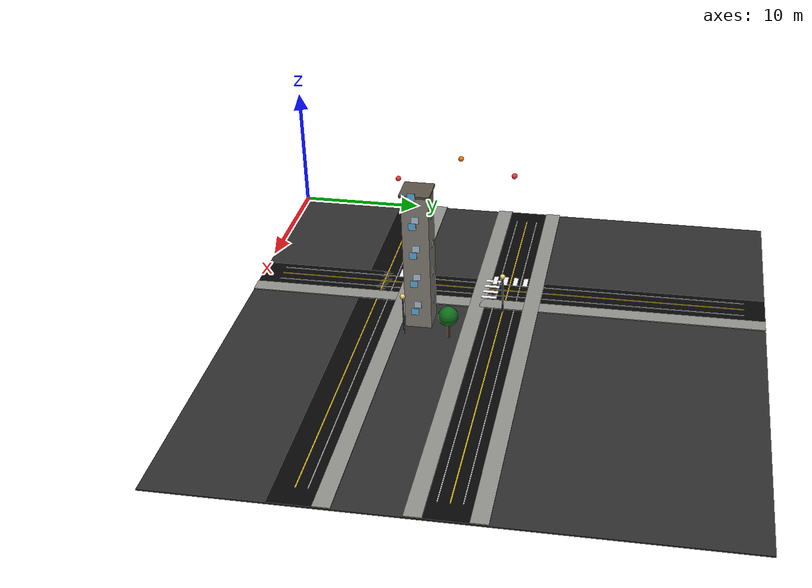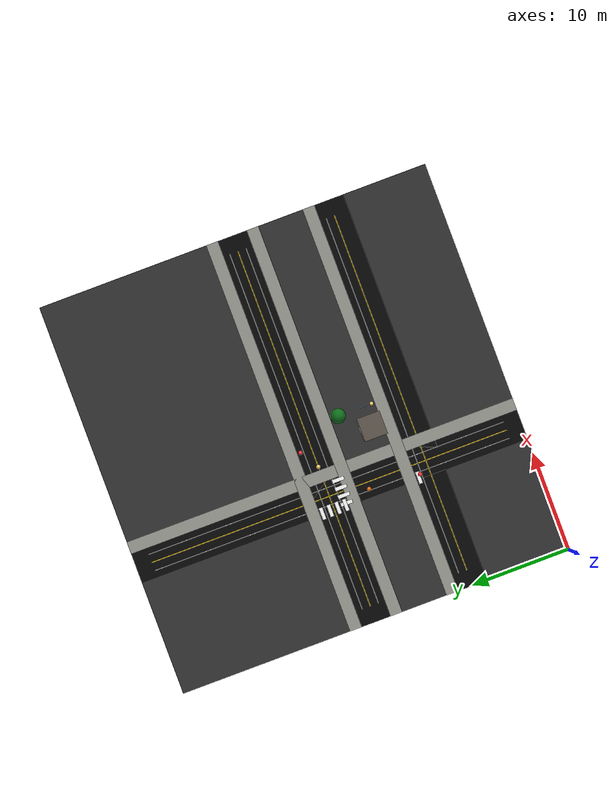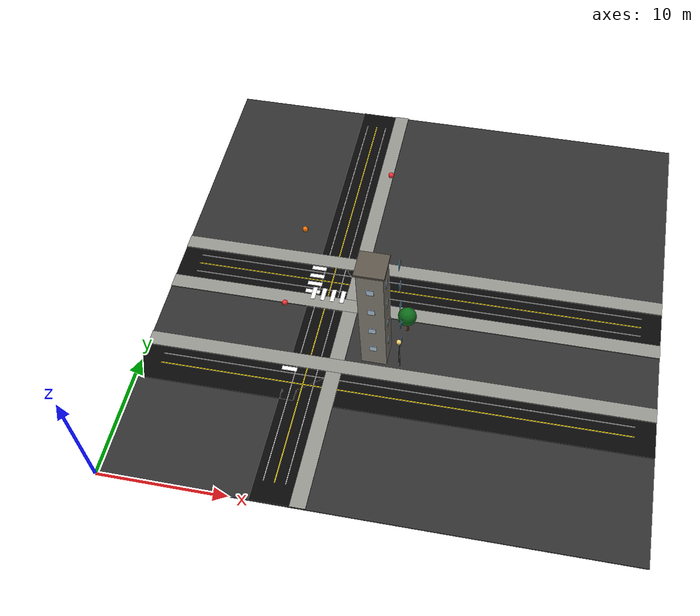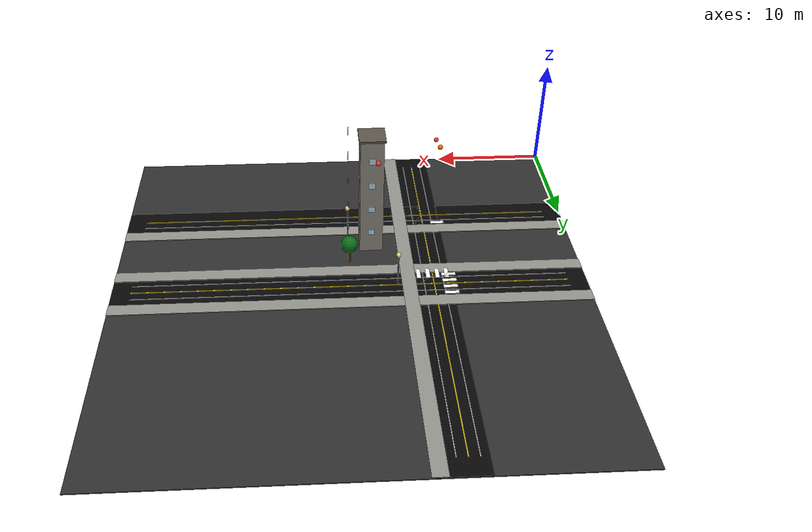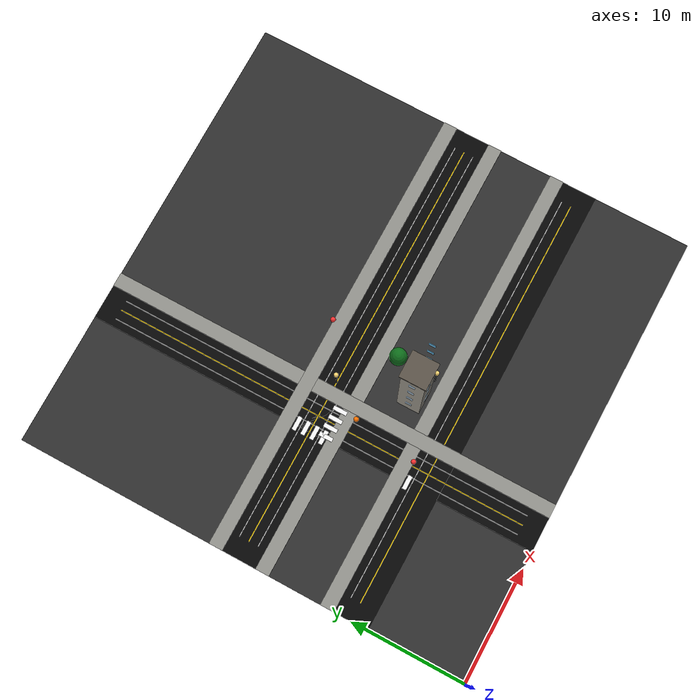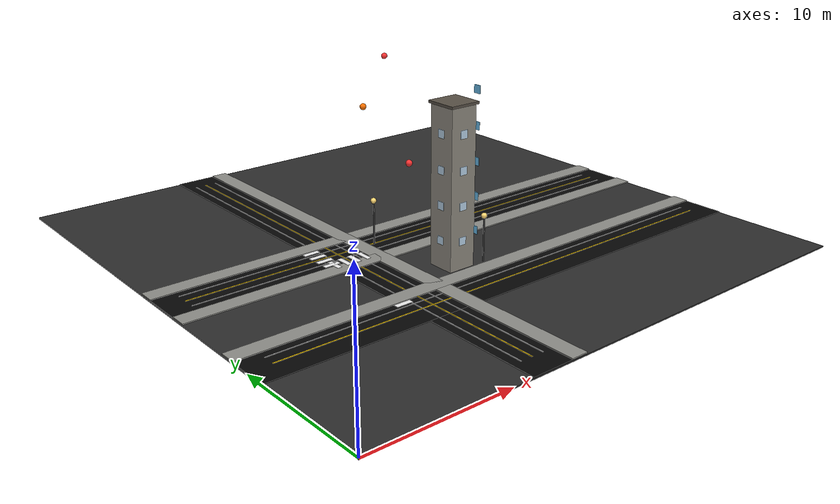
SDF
<sdf version="1.10">
 <world name="city_uav_demo">
  <model name="ground_plane">
   <static>true</static>
   <pose>20.0000 20.0000 -0.0500 0 0 0.0000</pose>
   <link name="link">
    <collision name="collision"><geometry><box><size>40.0000 40.0000 0.1000</size></box></geometry></collision>
    <visual name="visual">
     <geometry><box><size>40.0000 40.0000 0.1000</size></box></geometry>
     <material><ambient>0.18 0.18 0.18 1.0</ambient><diffuse>0.18 0.18 0.18 1.0</diffuse></material>
    </visual>
   </link>
  </model>
  <model name="road_0_surface">
   <static>true</static>
   <pose>20.0000 10.0000 0.0400 0 0 0.0000</pose>
   <link name="link">
    <collision name="collision"><geometry><box><size>40.0000 3.0000 0.0400</size></box></geometry></collision>
    <visual name="visual">
     <geometry><box><size>40.0000 3.0000 0.0400</size></box></geometry>
     <material><ambient>0.025 0.025 0.025 1.0</ambient><diffuse>0.025 0.025 0.025 1.0</diffuse></material>
    </visual>
   </link>
  </model>
  <model name="road_0_sidewalk_right">
   <static>true</static>
   <pose>20.0000 12.1000 0.0800 0 0 0.0000</pose>
   <link name="link">
    <visual name="visual">
     <geometry><box><size>40.0000 1.2000 0.0800</size></box></geometry>
     <material><ambient>0.56 0.56 0.54 1.0</ambient><diffuse>0.56 0.56 0.54 1.0</diffuse></material>
    </visual>
   </link>
  </model>
  <model name="road_0_center_line">
   <static>true</static>
   <pose>20.0000 10.0000 0.0950 0 0 0.0000</pose>
   <link name="link">
    <visual name="visual">
     <geometry><box><size>36.8000 0.0800 0.0250</size></box></geometry>
     <material><ambient>1.0 0.82 0.0 1.0</ambient><diffuse>1.0 0.82 0.0 1.0</diffuse></material>
    </visual>
   </link>
  </model>
  <model name="road_0_white_line_2">
   <static>true</static>
   <pose>20.0000 10.8400 0.0950 0 0 0.0000</pose>
   <link name="link">
    <visual name="visual">
     <geometry><box><size>36.8000 0.0550 0.0250</size></box></geometry>
     <material><ambient>0.95 0.95 0.95 1.0</ambient><diffuse>0.95 0.95 0.95 1.0</diffuse></material>
    </visual>
   </link>
  </model>
  <model name="road_1_surface">
   <static>true</static>
   <pose>20.0000 20.0000 0.0400 0 0 0.0000</pose>
   <link name="link">
    <collision name="collision"><geometry><box><size>40.0000 3.0000 0.0400</size></box></geometry></collision>
    <visual name="visual">
     <geometry><box><size>40.0000 3.0000 0.0400</size></box></geometry>
     <material><ambient>0.025 0.025 0.025 1.0</ambient><diffuse>0.025 0.025 0.025 1.0</diffuse></material>
    </visual>
   </link>
  </model>
  <model name="road_1_sidewalk_left">
   <static>true</static>
   <pose>20.0000 17.9000 0.0800 0 0 0.0000</pose>
   <link name="link">
    <visual name="visual">
     <geometry><box><size>40.0000 1.2000 0.0800</size></box></geometry>
     <material><ambient>0.56 0.56 0.54 1.0</ambient><diffuse>0.56 0.56 0.54 1.0</diffuse></material>
    </visual>
   </link>
  </model>
  <model name="road_1_sidewalk_right">
   <static>true</static>
   <pose>20.0000 22.1000 0.0800 0 0 0.0000</pose>
   <link name="link">
    <visual name="visual">
     <geometry><box><size>40.0000 1.2000 0.0800</size></box></geometry>
     <material><ambient>0.56 0.56 0.54 1.0</ambient><diffuse>0.56 0.56 0.54 1.0</diffuse></material>
    </visual>
   </link>
  </model>
  <model name="road_1_center_line">
   <static>true</static>
   <pose>20.0000 20.0000 0.0950 0 0 0.0000</pose>
   <link name="link">
    <visual name="visual">
     <geometry><box><size>36.8000 0.0800 0.0250</size></box></geometry>
     <material><ambient>1.0 0.82 0.0 1.0</ambient><diffuse>1.0 0.82 0.0 1.0</diffuse></material>
    </visual>
   </link>
  </model>
  <model name="road_1_white_line_1">
   <static>true</static>
   <pose>20.0000 19.1600 0.0950 0 0 0.0000</pose>
   <link name="link">
    <visual name="visual">
     <geometry><box><size>36.8000 0.0550 0.0250</size></box></geometry>
     <material><ambient>0.95 0.95 0.95 1.0</ambient><diffuse>0.95 0.95 0.95 1.0</diffuse></material>
    </visual>
   </link>
  </model>
  <model name="road_1_white_line_2">
   <static>true</static>
   <pose>20.0000 20.8400 0.0950 0 0 0.0000</pose>
   <link name="link">
    <visual name="visual">
     <geometry><box><size>36.8000 0.0550 0.0250</size></box></geometry>
     <material><ambient>0.95 0.95 0.95 1.0</ambient><diffuse>0.95 0.95 0.95 1.0</diffuse></material>
    </visual>
   </link>
  </model>
  <model name="road_3_surface">
   <static>true</static>
   <pose>13.0000 20.0000 0.0400 0 0 0.0000</pose>
   <link name="link">
    <collision name="collision"><geometry><box><size>3.0000 40.0000 0.0400</size></box></geometry></collision>
    <visual name="visual">
     <geometry><box><size>3.0000 40.0000 0.0400</size></box></geometry>
     <material><ambient>0.025 0.025 0.025 1.0</ambient><diffuse>0.025 0.025 0.025 1.0</diffuse></material>
    </visual>
   </link>
  </model>
  <model name="road_3_sidewalk_right">
   <static>true</static>
   <pose>15.1000 20.0000 0.0800 0 0 0.0000</pose>
   <link name="link">
    <visual name="visual">
     <geometry><box><size>1.2000 40.0000 0.0800</size></box></geometry>
     <material><ambient>0.56 0.56 0.54 1.0</ambient><diffuse>0.56 0.56 0.54 1.0</diffuse></material>
    </visual>
   </link>
  </model>
  <model name="road_3_center_line">
   <static>true</static>
   <pose>13.0000 20.0000 0.0950 0 0 0.0000</pose>
   <link name="link">
    <visual name="visual">
     <geometry><box><size>0.0800 36.8000 0.0250</size></box></geometry>
     <material><ambient>1.0 0.82 0.0 1.0</ambient><diffuse>1.0 0.82 0.0 1.0</diffuse></material>
    </visual>
   </link>
  </model>
  <model name="road_3_white_line_1">
   <static>true</static>
   <pose>12.1600 20.0000 0.0950 0 0 0.0000</pose>
   <link name="link">
    <visual name="visual">
     <geometry><box><size>0.0550 36.8000 0.0250</size></box></geometry>
     <material><ambient>0.95 0.95 0.95 1.0</ambient><diffuse>0.95 0.95 0.95 1.0</diffuse></material>
    </visual>
   </link>
  </model>
  <model name="road_3_white_line_2">
   <static>true</static>
   <pose>13.8400 20.0000 0.0950 0 0 0.0000</pose>
   <link name="link">
    <visual name="visual">
     <geometry><box><size>0.0550 36.8000 0.0250</size></box></geometry>
     <material><ambient>0.95 0.95 0.95 1.0</ambient><diffuse>0.95 0.95 0.95 1.0</diffuse></material>
    </visual>
   </link>
  </model>
  <model name="crosswalk_0_v_3">
   <static>true</static>
   <pose>11.6500 11.2000 0.1200 0 0 0.0000</pose>
   <link name="link">
    <visual name="visual">
     <geometry><box><size>1.2000 0.3500 0.0250</size></box></geometry>
     <material><ambient>0.95 0.95 0.95 1.0</ambient><diffuse>0.95 0.95 0.95 1.0</diffuse></material>
    </visual>
   </link>
  </model>
  <model name="crosswalk_2_h_0">
   <static>true</static>
   <pose>11.8000 18.6500 0.1200 0 0 0.0000</pose>
   <link name="link">
    <visual name="visual">
     <geometry><box><size>0.3500 1.2000 0.0250</size></box></geometry>
     <material><ambient>0.95 0.95 0.95 1.0</ambient><diffuse>0.95 0.95 0.95 1.0</diffuse></material>
    </visual>
   </link>
  </model>
  <model name="crosswalk_2_v_0">
   <static>true</static>
   <pose>11.6500 18.8000 0.1200 0 0 0.0000</pose>
   <link name="link">
    <visual name="visual">
     <geometry><box><size>1.2000 0.3500 0.0250</size></box></geometry>
     <material><ambient>0.95 0.95 0.95 1.0</ambient><diffuse>0.95 0.95 0.95 1.0</diffuse></material>
    </visual>
   </link>
  </model>
  <model name="crosswalk_2_h_1">
   <static>true</static>
   <pose>12.6000 18.6500 0.1200 0 0 0.0000</pose>
   <link name="link">
    <visual name="visual">
     <geometry><box><size>0.3500 1.2000 0.0250</size></box></geometry>
     <material><ambient>0.95 0.95 0.95 1.0</ambient><diffuse>0.95 0.95 0.95 1.0</diffuse></material>
    </visual>
   </link>
  </model>
  <model name="crosswalk_2_v_1">
   <static>true</static>
   <pose>11.6500 19.6000 0.1200 0 0 0.0000</pose>
   <link name="link">
    <visual name="visual">
     <geometry><box><size>1.2000 0.3500 0.0250</size></box></geometry>
     <material><ambient>0.95 0.95 0.95 1.0</ambient><diffuse>0.95 0.95 0.95 1.0</diffuse></material>
    </visual>
   </link>
  </model>
  <model name="crosswalk_2_h_2">
   <static>true</static>
   <pose>13.4000 18.6500 0.1200 0 0 0.0000</pose>
   <link name="link">
    <visual name="visual">
     <geometry><box><size>0.3500 1.2000 0.0250</size></box></geometry>
     <material><ambient>0.95 0.95 0.95 1.0</ambient><diffuse>0.95 0.95 0.95 1.0</diffuse></material>
    </visual>
   </link>
  </model>
  <model name="crosswalk_2_v_2">
   <static>true</static>
   <pose>11.6500 20.4000 0.1200 0 0 0.0000</pose>
   <link name="link">
    <visual name="visual">
     <geometry><box><size>1.2000 0.3500 0.0250</size></box></geometry>
     <material><ambient>0.95 0.95 0.95 1.0</ambient><diffuse>0.95 0.95 0.95 1.0</diffuse></material>
    </visual>
   </link>
  </model>
  <model name="crosswalk_2_h_3">
   <static>true</static>
   <pose>14.2000 18.6500 0.1200 0 0 0.0000</pose>
   <link name="link">
    <visual name="visual">
     <geometry><box><size>0.3500 1.2000 0.0250</size></box></geometry>
     <material><ambient>0.95 0.95 0.95 1.0</ambient><diffuse>0.95 0.95 0.95 1.0</diffuse></material>
    </visual>
   </link>
  </model>
  <model name="crosswalk_2_v_3">
   <static>true</static>
   <pose>11.6500 21.2000 0.1200 0 0 0.0000</pose>
   <link name="link">
    <visual name="visual">
     <geometry><box><size>1.2000 0.3500 0.0250</size></box></geometry>
     <material><ambient>0.95 0.95 0.95 1.0</ambient><diffuse>0.95 0.95 0.95 1.0</diffuse></material>
    </visual>
   </link>
  </model>
  <model name="building_22_body">
   <static>true</static>
   <pose>18.0000 14.0000 5.5000 0 0 0.0000</pose>
   <link name="link">
    <collision name="collision"><geometry><box><size>2.0000 2.0000 11.0000</size></box></geometry></collision>
    <visual name="visual">
     <geometry><box><size>2.0000 2.0000 11.0000</size></box></geometry>
     <material><ambient>0.58 0.56 0.52 1.0</ambient><diffuse>0.58 0.56 0.52 1.0</diffuse></material>
    </visual>
   </link>
  </model>
  <model name="building_22_roof">
   <static>true</static>
   <pose>18.0000 14.0000 11.0900 0 0 0.0000</pose>
   <link name="link">
    <collision name="collision"><geometry><box><size>2.2500 2.2500 0.1800</size></box></geometry></collision>
    <visual name="visual">
     <geometry><box><size>2.2500 2.2500 0.1800</size></box></geometry>
     <material><ambient>0.35 0.32 0.28 1.0</ambient><diffuse>0.35 0.32 0.28 1.0</diffuse></material>
    </visual>
   </link>
  </model>
  <model name="building_22_window_front_0">
   <static>true</static>
   <pose>18.0000 12.9880 2.0000 0 0 0.0000</pose>
   <link name="link">
    <visual name="visual">
     <geometry><box><size>0.5500 0.0350 0.5500</size></box></geometry>
     <material><ambient>0.75 0.86 0.95 1.0</ambient><diffuse>0.75 0.86 0.95 1.0</diffuse></material>
    </visual>
   </link>
  </model>
  <model name="building_22_window_front_1">
   <static>true</static>
   <pose>18.0000 12.9880 4.4000 0 0 0.0000</pose>
   <link name="link">
    <visual name="visual">
     <geometry><box><size>0.5500 0.0350 0.5500</size></box></geometry>
     <material><ambient>0.75 0.86 0.95 1.0</ambient><diffuse>0.75 0.86 0.95 1.0</diffuse></material>
    </visual>
   </link>
  </model>
  <model name="building_22_window_front_2">
   <static>true</static>
   <pose>18.0000 12.9880 6.8000 0 0 0.0000</pose>
   <link name="link">
    <visual name="visual">
     <geometry><box><size>0.5500 0.0350 0.5500</size></box></geometry>
     <material><ambient>0.75 0.86 0.95 1.0</ambient><diffuse>0.75 0.86 0.95 1.0</diffuse></material>
    </visual>
   </link>
  </model>
  <model name="building_22_window_front_3">
   <static>true</static>
   <pose>18.0000 12.9880 9.2000 0 0 0.0000</pose>
   <link name="link">
    <visual name="visual">
     <geometry><box><size>0.5500 0.0350 0.5500</size></box></geometry>
     <material><ambient>0.75 0.86 0.95 1.0</ambient><diffuse>0.75 0.86 0.95 1.0</diffuse></material>
    </visual>
   </link>
  </model>
  <model name="building_22_window_back_0">
   <static>true</static>
   <pose>18.0000 15.0120 2.0000 0 0 0.0000</pose>
   <link name="link">
    <visual name="visual">
     <geometry><box><size>0.5500 0.0350 0.5500</size></box></geometry>
     <material><ambient>0.75 0.86 0.95 1.0</ambient><diffuse>0.75 0.86 0.95 1.0</diffuse></material>
    </visual>
   </link>
  </model>
  <model name="building_22_window_back_1">
   <static>true</static>
   <pose>18.0000 15.0120 4.4000 0 0 0.0000</pose>
   <link name="link">
    <visual name="visual">
     <geometry><box><size>0.5500 0.0350 0.5500</size></box></geometry>
     <material><ambient>0.75 0.86 0.95 1.0</ambient><diffuse>0.75 0.86 0.95 1.0</diffuse></material>
    </visual>
   </link>
  </model>
  <model name="building_22_window_back_2">
   <static>true</static>
   <pose>18.0000 15.0120 6.8000 0 0 0.0000</pose>
   <link name="link">
    <visual name="visual">
     <geometry><box><size>0.5500 0.0350 0.5500</size></box></geometry>
     <material><ambient>0.75 0.86 0.95 1.0</ambient><diffuse>0.75 0.86 0.95 1.0</diffuse></material>
    </visual>
   </link>
  </model>
  <model name="building_22_window_back_3">
   <static>true</static>
   <pose>18.0000 15.0120 9.2000 0 0 0.0000</pose>
   <link name="link">
    <visual name="visual">
     <geometry><box><size>0.5500 0.0350 0.5500</size></box></geometry>
     <material><ambient>0.75 0.86 0.95 1.0</ambient><diffuse>0.75 0.86 0.95 1.0</diffuse></material>
    </visual>
   </link>
  </model>
  <model name="building_22_window_left_0">
   <static>true</static>
   <pose>16.9880 14.0000 2.0000 0 0 0.0000</pose>
   <link name="link">
    <visual name="visual">
     <geometry><box><size>0.0350 0.5500 0.5500</size></box></geometry>
     <material><ambient>0.75 0.86 0.95 1.0</ambient><diffuse>0.75 0.86 0.95 1.0</diffuse></material>
    </visual>
   </link>
  </model>
  <model name="building_22_window_left_1">
   <static>true</static>
   <pose>16.9880 14.0000 4.4000 0 0 0.0000</pose>
   <link name="link">
    <visual name="visual">
     <geometry><box><size>0.0350 0.5500 0.5500</size></box></geometry>
     <material><ambient>0.75 0.86 0.95 1.0</ambient><diffuse>0.75 0.86 0.95 1.0</diffuse></material>
    </visual>
   </link>
  </model>
  <model name="building_22_window_left_2">
   <static>true</static>
   <pose>16.9880 14.0000 6.8000 0 0 0.0000</pose>
   <link name="link">
    <visual name="visual">
     <geometry><box><size>0.0350 0.5500 0.5500</size></box></geometry>
     <material><ambient>0.75 0.86 0.95 1.0</ambient><diffuse>0.75 0.86 0.95 1.0</diffuse></material>
    </visual>
   </link>
  </model>
  <model name="building_22_window_left_3">
   <static>true</static>
   <pose>16.9880 14.0000 9.2000 0 0 0.0000</pose>
   <link name="link">
    <visual name="visual">
     <geometry><box><size>0.0350 0.5500 0.5500</size></box></geometry>
     <material><ambient>0.75 0.86 0.95 1.0</ambient><diffuse>0.75 0.86 0.95 1.0</diffuse></material>
    </visual>
   </link>
  </model>
  <model name="building_22_window_right_0">
   <static>true</static>
   <pose>19.0120 14.0000 2.0000 0 0 0.0000</pose>
   <link name="link">
    <visual name="visual">
     <geometry><box><size>0.0350 0.5500 0.5500</size></box></geometry>
     <material><ambient>0.75 0.86 0.95 1.0</ambient><diffuse>0.75 0.86 0.95 1.0</diffuse></material>
    </visual>
   </link>
  </model>
  <model name="building_22_window_right_1">
   <static>true</static>
   <pose>19.0120 14.0000 4.4000 0 0 0.0000</pose>
   <link name="link">
    <visual name="visual">
     <geometry><box><size>0.0350 0.5500 0.5500</size></box></geometry>
     <material><ambient>0.75 0.86 0.95 1.0</ambient><diffuse>0.75 0.86 0.95 1.0</diffuse></material>
    </visual>
   </link>
  </model>
  <model name="building_22_window_right_2">
   <static>true</static>
   <pose>19.0120 14.0000 6.8000 0 0 0.0000</pose>
   <link name="link">
    <visual name="visual">
     <geometry><box><size>0.0350 0.5500 0.5500</size></box></geometry>
     <material><ambient>0.75 0.86 0.95 1.0</ambient><diffuse>0.75 0.86 0.95 1.0</diffuse></material>
    </visual>
   </link>
  </model>
  <model name="building_22_window_right_3">
   <static>true</static>
   <pose>19.0120 14.0000 9.2000 0 0 0.0000</pose>
   <link name="link">
    <visual name="visual">
     <geometry><box><size>0.0350 0.5500 0.5500</size></box></geometry>
     <material><ambient>0.75 0.86 0.95 1.0</ambient><diffuse>0.75 0.86 0.95 1.0</diffuse></material>
    </visual>
   </link>
  </model>
  <model name="building_23_window_left_0">
   <static>true</static>
   <pose>19.9880 14.0000 2.0000 0 0 0.0000</pose>
   <link name="link">
    <visual name="visual">
     <geometry><box><size>0.0350 0.5500 0.5500</size></box></geometry>
     <material><ambient>0.42 0.76 0.95 1.0</ambient><diffuse>0.42 0.76 0.95 1.0</diffuse></material>
    </visual>
   </link>
  </model>
  <model name="building_23_window_left_1">
   <static>true</static>
   <pose>19.9880 14.0000 4.4000 0 0 0.0000</pose>
   <link name="link">
    <visual name="visual">
     <geometry><box><size>0.0350 0.5500 0.5500</size></box></geometry>
     <material><ambient>0.42 0.76 0.95 1.0</ambient><diffuse>0.42 0.76 0.95 1.0</diffuse></material>
    </visual>
   </link>
  </model>
  <model name="building_23_window_left_2">
   <static>true</static>
   <pose>19.9880 14.0000 6.8000 0 0 0.0000</pose>
   <link name="link">
    <visual name="visual">
     <geometry><box><size>0.0350 0.5500 0.5500</size></box></geometry>
     <material><ambient>0.42 0.76 0.95 1.0</ambient><diffuse>0.42 0.76 0.95 1.0</diffuse></material>
    </visual>
   </link>
  </model>
  <model name="building_23_window_left_3">
   <static>true</static>
   <pose>19.9880 14.0000 9.2000 0 0 0.0000</pose>
   <link name="link">
    <visual name="visual">
     <geometry><box><size>0.0350 0.5500 0.5500</size></box></geometry>
     <material><ambient>0.42 0.76 0.95 1.0</ambient><diffuse>0.42 0.76 0.95 1.0</diffuse></material>
    </visual>
   </link>
  </model>
  <model name="building_23_window_left_4">
   <static>true</static>
   <pose>19.9880 14.0000 11.6000 0 0 0.0000</pose>
   <link name="link">
    <visual name="visual">
     <geometry><box><size>0.0350 0.5500 0.5500</size></box></geometry>
     <material><ambient>0.42 0.76 0.95 1.0</ambient><diffuse>0.42 0.76 0.95 1.0</diffuse></material>
    </visual>
   </link>
  </model>
  <model name="streetlight_1_pole">
   <static>true</static>
   <pose>20.0000 13.1000 1.6000 0.0000 0.0000 0.0000</pose>
   <link name="link">
    <visual name="visual">
     <geometry><cylinder><radius>0.0600</radius><length>3.2000</length></cylinder></geometry>
     <material><ambient>0.18 0.18 0.18 1.0</ambient><diffuse>0.18 0.18 0.18 1.0</diffuse></material>
    </visual>
   </link>
  </model>
  <model name="streetlight_1_lamp">
   <static>true</static>
   <pose>20.0000 13.1000 3.2500 0 0 0</pose>
   <link name="link">
    <visual name="visual">
     <geometry><sphere><radius>0.2000</radius></sphere></geometry>
     <material><ambient>1.0 0.85 0.45 1.0</ambient><diffuse>1.0 0.85 0.45 1.0</diffuse></material>
    </visual>
   </link>
  </model>
  <model name="tree_13_trunk">
   <static>true</static>
   <pose>20.0000 16.5000 0.7500 0.0000 0.0000 0.0000</pose>
   <link name="link">
    <visual name="visual">
     <geometry><cylinder><radius>0.1200</radius><length>1.5000</length></cylinder></geometry>
     <material><ambient>0.32 0.18 0.08 1.0</ambient><diffuse>0.32 0.18 0.08 1.0</diffuse></material>
    </visual>
   </link>
  </model>
  <model name="tree_13_crown">
   <static>true</static>
   <pose>20.0000 16.5000 1.8500 0 0 0</pose>
   <link name="link">
    <visual name="visual">
     <geometry><sphere><radius>0.7500</radius></sphere></geometry>
     <material><ambient>0.05 0.42 0.10 1.0</ambient><diffuse>0.05 0.42 0.10 1.0</diffuse></material>
    </visual>
   </link>
  </model>
  <model name="streetlight_10_pole">
   <static>true</static>
   <pose>16.1000 20.0000 1.6000 0.0000 0.0000 0.0000</pose>
   <link name="link">
    <visual name="visual">
     <geometry><cylinder><radius>0.0600</radius><length>3.2000</length></cylinder></geometry>
     <material><ambient>0.18 0.18 0.18 1.0</ambient><diffuse>0.18 0.18 0.18 1.0</diffuse></material>
    </visual>
   </link>
  </model>
  <model name="streetlight_10_lamp">
   <static>true</static>
   <pose>16.1000 20.0000 3.2500 0 0 0</pose>
   <link name="link">
    <visual name="visual">
     <geometry><sphere><radius>0.2000</radius></sphere></geometry>
     <material><ambient>1.0 0.85 0.45 1.0</ambient><diffuse>1.0 0.85 0.45 1.0</diffuse></material>
    </visual>
   </link>
  </model>
  <model name="uav_1_path_2">
   <static>true</static>
   <pose>12.6469 16.3126 11.2128 0 0 0</pose>
   <link name="link">
    <visual name="visual">
     <geometry><sphere><radius>0.2000</radius></sphere></geometry>
     <material><ambient>1.0 0.45 0.0 1.0</ambient><diffuse>1.0 0.45 0.0 1.0</diffuse></material>
    </visual>
   </link>
  </model>
  <model name="uav_4_path_4">
   <static>true</static>
   <pose>18.0224 21.1081 12.8123 0 0 0</pose>
   <link name="link">
    <visual name="visual">
     <geometry><sphere><radius>0.2000</radius></sphere></geometry>
     <material><ambient>1.0 0.2 0.2 1.0</ambient><diffuse>1.0 0.2 0.2 1.0</diffuse></material>
    </visual>
   </link>
  </model>
  <model name="uav_4_path_6">
   <static>true</static>
   <pose>12.1996 11.2974 8.9500 0 0 0</pose>
   <link name="link">
    <visual name="visual">
     <geometry><sphere><radius>0.2000</radius></sphere></geometry>
     <material><ambient>1.0 0.2 0.2 1.0</ambient><diffuse>1.0 0.2 0.2 1.0</diffuse></material>
    </visual>
   </link>
  </model>
 </world>
</sdf>
